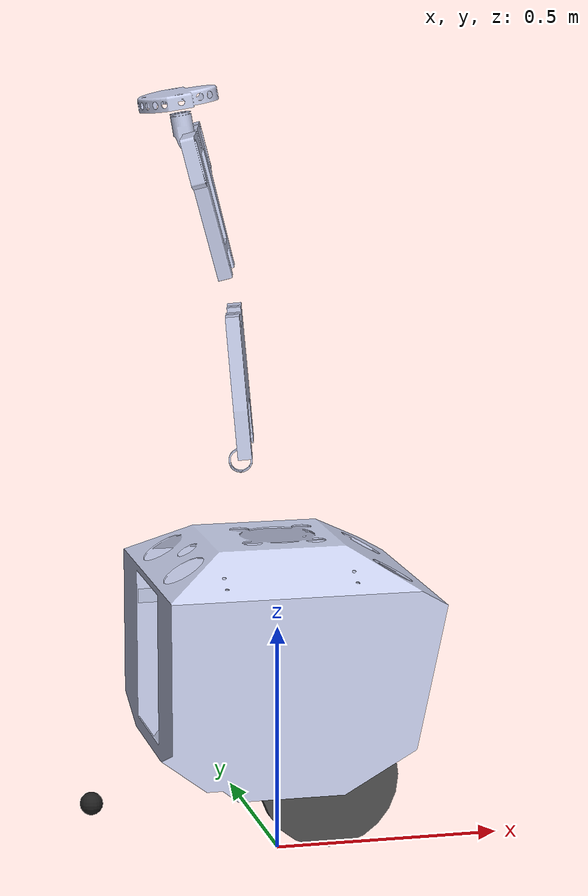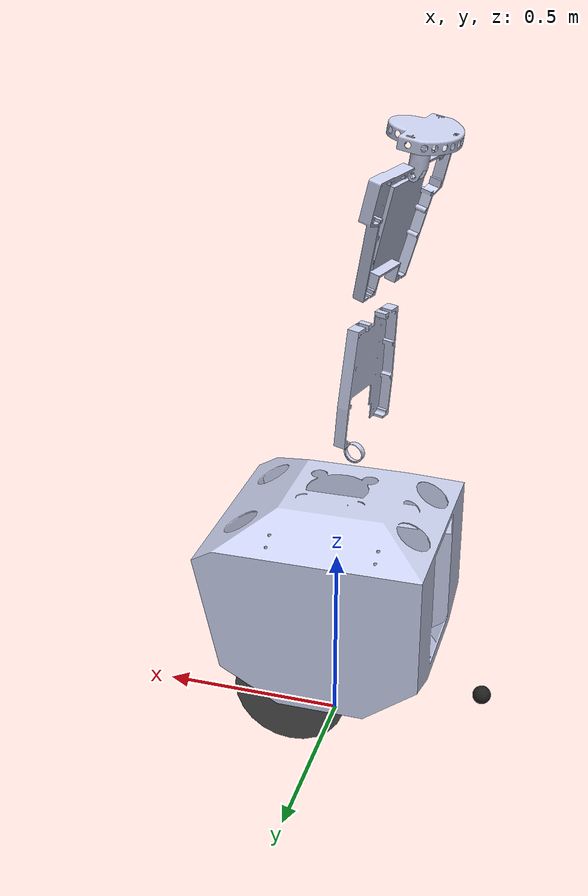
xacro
<?xml version="1.0"?>
<robot name="murom" xmlns:xacro="http://ros.org/wiki/xacro">
  <xacro:include filename="$(find murom_description)/urdf/kinect/kinect2.urdf.xacro"/>
  <xacro:include filename="$(find murom_description)/urdf/common_properties.urdf.xacro"/>
  <xacro:include filename="$(find murom_description)/urdf/murom_properties.urdf.xacro"/>

  <xacro:include filename="$(find murom_description)/urdf/wheel.urdf.xacro" />

  <!-- ros_control plugin -->
<link
    name="base_footprint">

</link>

  <joint
    name="base_joint"
    type="fixed">
    <origin
      xyz="0 0 0.4"
      rpy="0 0 0" />
    <parent
      link="base_footprint" />
    <child
      link="base_link" />
  </joint>

  <link
    name="base_link">
    <inertial>
         <origin
           xyz="0.028634 -0.017991 0.021937"
           rpy="0 0 0" />
         <mass
           value="72.98" />
         <inertia
           ixx="4.9013"
           ixy="0.0071913"
           ixz="-0.00020072"
           iyy="4.3205"
           iyz="-0.056159"
           izz="6.1094" />
       </inertial>
    <visual>
      <origin
        xyz="0 0 0"
        rpy="0 0 0" />
      <geometry>
        <mesh
          filename="package://murom_description/meshes/found.STL" />
      </geometry>
      <material
        name="">
        <color
          rgba="0.792156862745098 0.819607843137255 0.933333333333333 1" />
      </material>
    </visual>
 <collision>
        <origin xyz="0.0 0.0 0.05" rpy="0 0 0"/>
  	    <geometry>
  	      <box size="0.5 0.5 0.5"/>
  	    </geometry>
  	  </collision>
  </link>
 <property name="caster_b_height" value="0.04" />
  <property name="caster_b_radius" value="0.025" />
  <property name="caster_b_mass" value="0.5" /> <!-- in kg-->

    <link name="caster_back_link">

    <visual>
      <origin xyz="0.02 0.02 0 " rpy="${M_PI/2} 0 0" />

      <geometry>

	<sphere radius="${caster_b_radius}" />

      </geometry>
      <material name="Black" />
    </visual>

      <collision>
        <geometry>
		<sphere radius="${caster_b_radius}" />
        </geometry>
      <origin xyz="0 0.02 0 " rpy="${M_PI/2} 0 0" />
      </collision>
      <inertial>
        <mass value="${caster_b_mass}" />
        <origin xyz="0 0 0" />
        <inertia ixx="0.001" ixy="0.0" ixz="0.0"
                 iyy="0.001" iyz="0.0"
                 izz="0.001" />
      </inertial>
    </link>

    <joint name="caster_back_joint" type="fixed">
      <parent link="base_link"/>
      <child link="caster_back_link"/>
      <origin xyz="-0.435 0.0 -0.25" rpy="${-M_PI/2} 0 0"/>
    </joint>

  <gazebo reference="caster_back_link">
    <turnGravityOff>false</turnGravityOff>
  </gazebo>

  <wheel lr="right" parent="base_link" translateX="0.15" translateY="0.5" flipY="1"/>
  <wheel lr="left" parent="base_link" translateX="0.15" translateY="-0.5" flipY="1"/>

  <link
    name="pillar">
    <inertial>
      <origin
        xyz="-0.0631336866138198 0.0777621940904345 0.14860000029975"
        rpy="0 0 0" />
      <mass
        value="0.0531161397704353" />
      <inertia
        ixx="0.001"
        ixy="0"
        ixz="0"
        iyy="0.001"
        iyz="0"
        izz="0.001" />
    </inertial>
    <visual>
      <origin
        xyz="0 0 0"
        rpy="0 0 0" />
      <geometry>
        <mesh
          filename="package://murom_description/meshes/pillar.STL" />
      </geometry>
      <material
        name="">
        <color
          rgba="0.792156862745098 0.819607843137255 0.933333333333333 1" />
      </material>
    </visual>
    <collision>
      <origin
        xyz="0 0 0"
        rpy="0 0 0" />
      <geometry>
        <mesh
          filename="package://murom_description/meshes/pillar.STL" />
      </geometry>
    </collision>
  </link>
  <joint
    name="Trunk_rotate"
    type="fixed">
    <origin
      xyz="0 0 0.310000000000001"
      rpy="6.63446666304453E-17 -1.1619707313851E-30 1.75141543457824E-14" />
    <parent
      link="base_link" />
    <child
      link="pillar" />
    <axis
      xyz="0 0 1" />
<limit effort="300" velocity="1" lower="${-M_PI/2}" upper="${M_PI/2}"/>
   <dynamics damping="50" friction="1"/>

  </joint>
  <link
    name="torsodown">
    <inertial>
      <origin
        xyz="0.00487675957913391 -0.0972323951472598 0.201036819967844"
        rpy="0 0 0" />
      <mass
        value="10" />
      <inertia
        ixx="0.03"
        ixy="0"
        ixz="0"
        iyy="0.02"
        iyz="0"
        izz="0.02" />
    </inertial>
    <visual>
      <origin
        xyz="0 0 0"
        rpy="0 0 0" />
      <geometry>
        <mesh
          filename="package://murom_description/meshes/torsodown.STL" />
      </geometry>
      <material
        name="">
        <color
          rgba="0.792156862745098 0.819607843137255 0.933333333333333 1" />
      </material>
    </visual>
    <collision>
      <origin
        xyz="0 0 0"
        rpy="0 0 0" />
      <geometry>
        <mesh
          filename="package://murom_description/meshes/torsodown.STL" />
      </geometry>
    </collision>
  </link>
  <joint
    name="Belly_turn"
    type="fixed">
    <origin
      xyz="-0.0545323092339866 0.113440016086032 0.148599999999998"
      rpy="1.07521796365408E-13 2.66832063276448E-14 -0.236566539214393" />
    <parent
      link="pillar" />
    <child
      link="torsodown" />
    <axis
      xyz="0 1 0" />
<limit effort="300" velocity="1" lower="0" upper="${M_PI/2}"/>
   <dynamics damping="50" friction="1"/>
  </joint>
  <link
    name="torsoup">
    <inertial>
      <origin
        xyz="-0.00429585365816983 0.0808651003021967 0.216033500785546"
        rpy="0 0 0" />
      <mass
        value="10" />
      <inertia
        ixx="0.08"
        ixy="0"
        ixz="0"
        iyy="0.04"
        iyz="0"
        izz="0.04" />
    </inertial>
    <visual>
      <origin
        xyz="0 0 0"
        rpy="0 0 0" />
      <geometry>
        <mesh
          filename="package://murom_description/meshes/torsoup.STL" />
      </geometry>
      <material
        name="">
        <color
          rgba="0.792156862745098 0.819607843137255 0.933333333333333 1" />
      </material>
    </visual>
    <collision>
      <origin
        xyz="0 0 0"
        rpy="0 0 0" />
      <geometry>
        <mesh
          filename="package://murom_description/meshes/torsoup.STL" />
      </geometry>
    </collision>
  </link>
  <joint
    name="Spine_move"
    type="fixed">
    <origin
      xyz="-0.0613353782819227 -0.178500000000035 0.371988556686935"
      rpy="-4.04415108415562E-17 -9.98985011185821E-15 -4.44089209850063E-16" />
    <parent
      link="torsodown" />
    <child
      link="torsoup" />
    <axis
      xyz="0 -1 0" />
<limit effort="300" velocity="1" lower="${-M_PI/4}" upper="${4*M_PI/5}"/>
   <dynamics damping="50" friction="1"/>
  </joint>
  <link
    name="neck">
    <inertial>
      <origin
        xyz="-0.00547021152448102 -0.0120000001708742 0.033101690130876"
        rpy="0 0 0" />
      <mass
        value="1" />
      <inertia
        ixx="0.0002"
        ixy="0"
        ixz="0"
        iyy="0.0002"
        iyz="0"
        izz="0.0002" />
    </inertial>
    <visual>
      <origin
        xyz="0 0 0"
        rpy="0 0 0" />
      <geometry>
        <mesh
          filename="package://murom_description/meshes/neck.STL" />
      </geometry>
      <material
        name="">
        <color
          rgba="0.792156862745098 0.819607843137255 0.933333333333333 1" />
      </material>
    </visual>
    <collision>
      <origin
        xyz="0 0 0"
        rpy="0 0 0" />
      <geometry>
        <mesh
          filename="package://murom_description/meshes/neck.STL" />
      </geometry>
    </collision>
  </link>
  <joint
    name="Neck_move"
    type="fixed">
    <origin
      xyz="-0.0516500646336157 0.093000000000035 0.325629296136459"
      rpy="-2.91064991763118E-16 8.45352016146653E-15 -5.55111512312578E-17" />
    <parent
      link="torsoup" />
    <child
      link="neck" />
    <axis
      xyz="0 1 0" />
<limit effort="300" velocity="1" lower="0" upper="${M_PI/2}"/>
   <dynamics damping="50" friction="1"/>
  </joint>
  <link
    name="head">
    <inertial>
      <mass
        value="1" />
      <inertia
        ixx="0.003"
        ixy="0"
        ixz="0"
        iyy="0.002"
        iyz="0"
        izz="0.004" />
    </inertial>
    <visual>
      <origin
        xyz="0 0 0"
        rpy="0 0 0" />
      <geometry>
        <mesh
          filename="package://murom_description/meshes/head.STL" />
      </geometry>
      <material
        name="">
        <color
          rgba="0.792156862745098 0.819607843137255 0.933333333333333 1" />
      </material>
    </visual>
    <collision>
      <origin
        xyz="0 0 0"
        rpy="0 0 0" />
      <geometry>
        <mesh
          filename="package://murom_description/meshes/head.STL" />
      </geometry>
    </collision>
  </link>
  <joint
    name="Head_rotate"
    type="fixed">
    <origin
      xyz="-0.0176086934682474 -0.0120000000000006 0.106554839938601"
      rpy="-0.0382211778794632 -0.159291058901152 0.23656653921441" />
    <parent
      link="neck" />
    <child
      link="head" />
    <axis
      xyz="0 0 1" />
<limit effort="300" velocity="1" lower="${-M_PI/2}" upper="${M_PI/2}"/>
   <dynamics damping="50" friction="1"/>
  </joint>

  <transmission name="tran1">
    <type>transmission_interface/SimpleTransmission</type>
    <joint name="wheel_left_joint">
      <hardwareInterface>VelocityJointInterface</hardwareInterface>
    </joint>
    <actuator name="left_motor">
      <hardwareInterface>VelocityJointInterface</hardwareInterface>
      <mechanicalReduction>1</mechanicalReduction>
    </actuator>
  </transmission>

  <transmission name="tran2">
    <type>transmission_interface/SimpleTransmission</type>
    <joint name="wheel_right_joint">
      <hardwareInterface>VelocityJointInterface</hardwareInterface>
    </joint>
    <actuator name="right_motor">
      <hardwareInterface>VelocityJointInterface</hardwareInterface>
      <mechanicalReduction>1</mechanicalReduction>
    </actuator>
  </transmission>

  <!-- hokuyo -->

  <link name="hokuyo_link">
    <visual>
      <origin xyz="0 0 0" rpy="0 0 0" />
      <geometry>
        <box size="0.05 0.05 0.05"/>
      </geometry>
      <material name="Blue" />
    </visual>
  </link>
  <joint name="hokuyo_joint" type="fixed">
    <origin xyz="${0.15 - 0.05/2} 0 ${0.02+0.05/4}" rpy="0 0 0" />
    <parent link="base_link"/>
    <child link="hokuyo_link" />
  </joint>

</robot>

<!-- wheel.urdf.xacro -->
<robot name="wheel" xmlns:xacro="http://www.ros.org/wiki/xacro">

  <!-- Wheels -->
  <property name="wheel_radius" value="0.15" />
  <property name="wheel_height" value="0.03" />
  <property name="wheel_mass" value="25" /> <!-- in kg-->

  <property name="base_x_origin_to_wheel_origin" value="0.35" />
  <property name="base_y_origin_to_wheel_origin" value="0.5" />
  <property name="base_z_origin_to_wheel_origin" value="-0.17" />

  <macro name="cylinder_inertia" params="m r h">
    <inertia  ixx="${m*(3*r*r+h*h)/12}" ixy = "0" ixz = "0"
              iyy="${m*(3*r*r+h*h)/12}" iyz = "0"
              izz="${m*r*r/2}" />
  </macro>

  <xacro:macro name="wheel" params="lr parent translateX translateY flipY"> <!--fb : front, back ; lr: left, right -->
    <link name="wheel_${lr}_link">
      <visual>
        <origin xyz="0 0 0" rpy="${flipY*M_PI/2} 0  0 " />
        <geometry>
          <cylinder length="${wheel_height}" radius="${wheel_radius}" />
        </geometry>
        <material name="DarkGray" />
      </visual>
      <collision>
        <origin xyz="0 0 0" rpy="${flipY*M_PI/2} 0 0 " />
        <geometry>
          <cylinder length="${wheel_height}" radius="${wheel_radius}" />
        </geometry>
      </collision>
      <inertial>
        <mass value="${wheel_mass}" />
        <origin xyz="0 0 0" />
        <cylinder_inertia  m="${wheel_mass}" r="${wheel_radius}" h="${wheel_height}" />
      </inertial>
    </link>

    <gazebo reference="${lr}_wheel">
      <mu1 value="1.0"/>
      <mu2 value="1.0"/>
      <kp  value="10000000.0" />
      <kd  value="1.0" />
      <fdir1 value="1 0 0"/>
      <material>Gazebo/Grey</material>
      <turnGravityOff>false</turnGravityOff>
    </gazebo>

    <joint name="wheel_${lr}_joint" type="continuous">
      <parent link="${parent}"/>
      <child link="wheel_${lr}_link"/>
      <origin xyz="${translateX * base_x_origin_to_wheel_origin} ${translateY * base_y_origin_to_wheel_origin} ${base_z_origin_to_wheel_origin}" rpy="0 0 0" />
      <axis xyz="0 1 0" rpy="0  0" />
      <limit effort="100" velocity="100"/>
      <joint_properties damping="0.0" friction="0.0"/>
    </joint>

    <!-- Transmission is important to link the joints and the controller -->
    <transmission name="${lr}_wheel_joint_trans">
      <type>transmission_interface/SimpleTransmission</type>
      <joint name="wheel_${lr}_joint" />
      <actuator name="${lr}_wheel_joint_motor">
        <hardwareInterface>EffortJointInterface</hardwareInterface>
        <mechanicalReduction>1</mechanicalReduction>
      </actuator>
    </transmission>

  </xacro:macro>
</robot>
